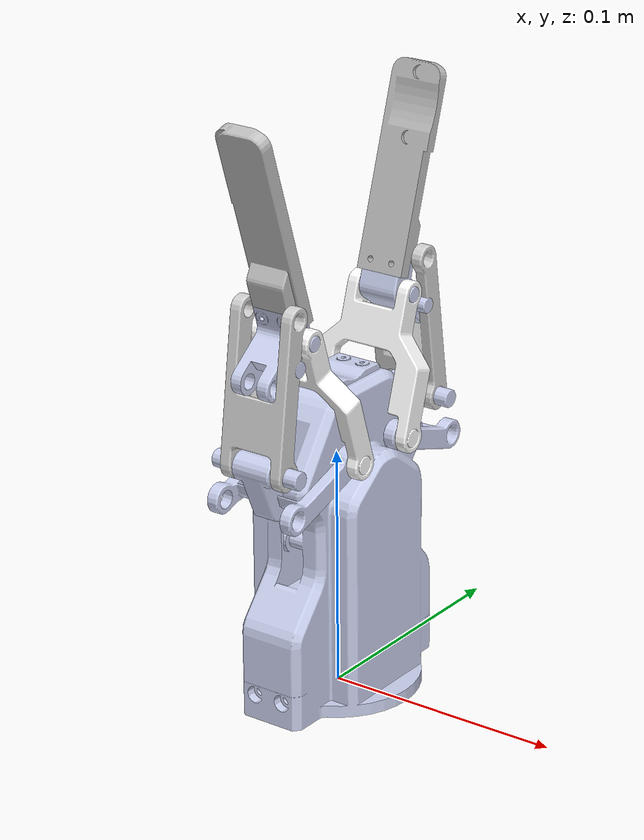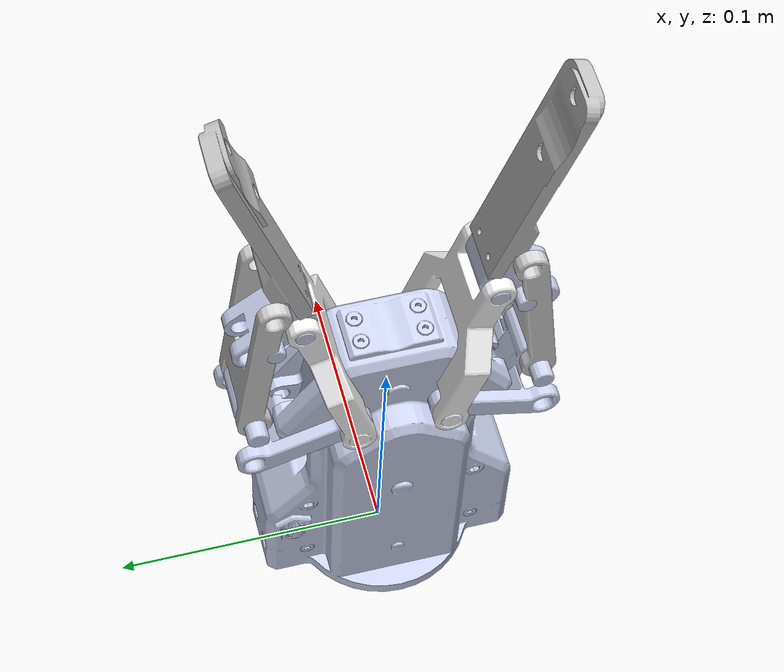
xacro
<?xml version="1.0"?>
<robot xmlns:xacro="http://www.ros.org/wiki/xacro" name="ag95">
  <xacro:include filename="$(find dh_description)/urdf/ag95.urdf.xacro" />
  <xacro:include filename="$(find dh_description)/urdf/ag95/finger.transmission.xacro" />

  <xacro:ag95 prefix="ag95_" />
  <xacro:finger_transmission prefix="ag95_" mechanical_reduction="${-100/0.03}" />

</robot>

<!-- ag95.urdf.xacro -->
<robot xmlns:xacro="http://www.ros.org/wiki/xacro">
  <xacro:include filename="$(find dh_description)/urdf/ag95/base_link.urdf.xacro" />
  <xacro:include filename="$(find dh_description)/urdf/ag95/finger.urdf.xacro" />
  <xacro:include filename="$(find dh_description)/urdf/ag95/outer_finger.urdf.xacro" />
  <xacro:include filename="$(find dh_description)/urdf/ag95/bottom_knuckle.urdf.xacro" />
  <xacro:include filename="$(find dh_description)/urdf/ag95/inner_knuckle.urdf.xacro" />
  <xacro:include filename="$(find dh_description)/urdf/ag95/outer_knuckle.urdf.xacro" />
  <xacro:include filename="$(find dh_description)/urdf/ag95/inner_finger.urdf.xacro" />
  <xacro:include filename="$(find dh_description)/urdf/ag95/inner_finger_pad.urdf.xacro" />

  <xacro:macro name="ag95" params="prefix:=''">

    <xacro:base_link prefix="${prefix}"/>
    <xacro:finger prefix="${prefix}"/>

    <xacro:outer_finger prefix="${prefix}" finger_prefix="left_"/>
    <xacro:bottom_knuckle prefix="${prefix}" finger_prefix="left_"/>
    <xacro:inner_knuckle prefix="${prefix}" finger_prefix="left_"/>
    <xacro:outer_knuckle prefix="${prefix}" finger_prefix="left_"/>
    <xacro:inner_finger prefix="${prefix}" finger_prefix="left_"/>
    <xacro:inner_finger_pad prefix="${prefix}" finger_prefix="left_"/>

    <xacro:outer_finger prefix="${prefix}" finger_prefix="right_" mirror="-1"/>
    <xacro:bottom_knuckle prefix="${prefix}" finger_prefix="right_" mirror="-1"/>
    <xacro:inner_knuckle prefix="${prefix}" finger_prefix="right_" mirror="-1"/>
    <xacro:outer_knuckle prefix="${prefix}" finger_prefix="right_" mirror="-1"/>
    <xacro:inner_finger prefix="${prefix}" finger_prefix="right_" mirror="-1"/>
    <xacro:inner_finger_pad prefix="${prefix}" finger_prefix="right_" mirror="-1"/>

  </xacro:macro>

</robot>

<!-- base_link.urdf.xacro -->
<robot xmlns:xacro="http://www.ros.org/wiki/xacro">

  <xacro:macro name="base_link" params="prefix">

    <link name="${prefix}base_link">
      <visual>
        <origin xyz="0 0 0" rpy="0 0 0" />
        <geometry>
          <mesh filename="package://dh_description/meshes/ag95/base_link.dae" />
        </geometry>
        <material name="">
          <color rgba="0.79216 0.81961 0.93333 1" />
        </material>
      </visual>
      <collision>
        <origin xyz="0 0 0" rpy="0 0 0" />
        <geometry>
          <mesh filename="package://dh_description/meshes/ag95/base_link.dae" />
        </geometry>
      </collision>
    </link>
    <inertial>
      <origin xyz="-1.9172E-05 4.6267E-05 0.054522" rpy="0 0 0" />
      <mass value="0.3499" />
      <inertia
        ixx="0.00050797" ixy="6.5338E-08" ixz="-7.1191E-08"
        iyy="0.00038427" iyz="3.8152E-07"
        izz="0.00016523" />
    </inertial>

  </xacro:macro>

</robot>

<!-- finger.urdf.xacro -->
<robot xmlns:xacro="http://www.ros.org/wiki/xacro">

  <xacro:macro name="finger" params="prefix">

    <xacro:property name="open" value="-0.03" />
    <xacro:property name="close" value="0.00" />

    <joint name="${prefix}finger_joint" type="prismatic">
      <origin xyz="0. 0. 0.085" rpy="0 0 0" />
      <parent link="${prefix}base_link" />
      <child link="${prefix}finger" />
      <axis xyz="0 0 1" />
      <limit lower="${open}" upper="${close}" velocity="0.03" effort="90.0" />
    </joint>

    <link name="${prefix}finger">
      <visual>
        <origin xyz="0 0 0" rpy="0 0 0" />
        <geometry>
          <mesh filename="package://dh_description/meshes/ag95/finger.dae" />
        </geometry>
        <material name="">
          <color rgba="1 1 1 1" />
        </material>
      </visual>
      <collision>
        <origin xyz="0 0 0" rpy="0 0 0" />
        <geometry>
          <mesh filename="package://dh_description/meshes/ag95/finger.dae" />
        </geometry>
      </collision>
      <inertial>
        <origin
          xyz="3.9135E-14 1.9462E-12 3.5194E-14" rpy="0 0 0" />
        <mass value="0.0066216" />
        <inertia
          ixx="1.4212E-06" ixy="-4.5344E-18" ixz="2.1335E-18"
          iyy="1.8936E-07" iyz="-2.1705E-19"
          izz="1.4719E-06" />
      </inertial>
    </link>

  </xacro:macro>

</robot>

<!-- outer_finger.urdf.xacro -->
<robot xmlns:xacro="http://www.ros.org/wiki/xacro">

  <xacro:macro name="outer_finger" params="prefix finger_prefix mirror:=1">

    <xacro:property name="open" value="-0.52360" />
    <xacro:property name="close" value="-0.22689" />

    <joint name="${prefix}${finger_prefix}outer_finger_joint" type="revolute">
      <origin xyz="0. ${mirror * 0.02141} 0." rpy="${-pi/2} 0 ${mirror * pi/2}" />
      <parent link="${prefix}finger" />
      <child link="${prefix}${finger_prefix}outer_finger" />
      <axis xyz="0 0 1" />
      <limit lower="${open}" upper="${close}" velocity="1.0" effort="90.0" />
      <mimic joint="${prefix}finger_joint" offset="${close}" multiplier="${(close - open) / 0.03}" />
    </joint>

    <link name="${prefix}${finger_prefix}outer_finger">
      <visual>
        <origin xyz="0 0 0" rpy="0 0 0" />
        <geometry>
          <mesh filename="package://dh_description/meshes/ag95/outer_finger.dae" />
        </geometry>
        <material name="">
          <color rgba="0.79216 0.81961 0.93333 1" />
        </material>
      </visual>
      <collision>
        <origin xyz="0 0 0" rpy="0 0 0" />
        <geometry>
          <mesh filename="package://dh_description/meshes/ag95/outer_finger.dae" />
        </geometry>
      </collision>
      <inertial>
        <origin xyz="0.056202 0.03372 -6.3379E-11" rpy="0 0 0" />
        <mass value="0.0067722" />
        <inertia
          ixx="1.3438E-06" ixy="-4.6858E-07" ixz="4.7977E-15"
          iyy="6.4835E-07" iyz="1.7311E-15"
          izz="1.4005E-06" />
      </inertial>
    </link>

  </xacro:macro>

</robot>

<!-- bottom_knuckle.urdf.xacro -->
<robot xmlns:xacro="http://www.ros.org/wiki/xacro">

  <xacro:macro name="bottom_knuckle" params="prefix finger_prefix mirror:=1">

    <xacro:property name="open" value="0.637045" />
    <xacro:property name="close" value="0.008727" />

    <joint name="${prefix}${finger_prefix}bottom_knuckle_joint" type="revolute">
      <origin xyz="0 ${mirror * 0.016} 0.10586" rpy="${-pi/2} 0 ${mirror * pi/2}" />
      <parent link="${prefix}base_link" />
      <child link="${prefix}${finger_prefix}bottom_knuckle" />
      <axis xyz="0 0 1" />
      <limit lower="${close}" upper="${open}" velocity="1.0" effort="90.0" />
      <mimic joint="${prefix}finger_joint" offset="${close}" multiplier="${(close - open) / 0.03}" />
    </joint>

    <link name="${prefix}${finger_prefix}bottom_knuckle">
      <visual>
        <origin xyz="0 0 0" rpy="0 0 0" />
        <geometry>
          <mesh filename="package://dh_description/meshes/ag95/bottom_knuckle.dae" />
        </geometry>
        <material name="">
          <color rgba="0.79216 0.81961 0.93333 1" />
        </material>
      </visual>
      <collision>
        <origin xyz="0 0 0" rpy="0 0 0" />
        <geometry>
          <mesh filename="package://dh_description/meshes/ag95/bottom_knuckle.dae" />
        </geometry>
      </collision>
      <inertial>
        <origin xyz="0.019421 0.0012759 5.0395E-09" rpy="0 0 0" />
        <mass value="0.0039541" />
        <inertia
          ixx="1.1534E-06" ixy="-2.1521E-09" ixz="-1.124E-13"
          iyy="1.7667E-06" iyz="-9.3728E-15"
          izz="6.8389E-07" />
      </inertial>
    </link>

  </xacro:macro>

</robot>

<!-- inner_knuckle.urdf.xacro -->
<robot xmlns:xacro="http://www.ros.org/wiki/xacro">

  <xacro:macro name="inner_knuckle" params="prefix finger_prefix mirror:=1">

    <xacro:property name="open" value="2.33525" />
    <xacro:property name="close" value="1.42244" />

    <joint name="${prefix}${finger_prefix}inner_knuckle_joint" type="revolute">
      <origin xyz="0 ${mirror * 0.016} 0.10586" rpy="${pi/2} 0 ${mirror * -pi/2}" />
      <parent link="${prefix}base_link" />
      <child link="${prefix}${finger_prefix}inner_knuckle" />
      <axis xyz="0 0 1" />
      <limit lower="${close}" upper="${open}" velocity="1.0"  effort="90.0" />
      <mimic joint="${prefix}finger_joint" offset="${close}" multiplier="${(close - open) / 0.03}" />
    </joint>

    <link name="${prefix}${finger_prefix}inner_knuckle">
      <visual>
        <origin xyz="0 0 0" rpy="0 0 0" />
        <geometry>
          <mesh filename="package://dh_description/meshes/ag95/inner_knuckle.dae" />
        </geometry>
        <material name="">
          <color rgba="1 1 1 1" />
        </material>
      </visual>
      <collision>
        <origin xyz="0 0 0" rpy="0 0 0" />
        <geometry>
          <mesh filename="package://dh_description/meshes/ag95/inner_knuckle.dae" />
        </geometry>
      </collision>
      <inertial>
        <origin xyz="-0.0014206 0.023192 -3.3876E-10" rpy="0 0 0" />
        <mass value="0.011317" />
        <inertia
          ixx="6.694E-06" ixy="1.0721E-07" ixz="2.7063E-15"
          iyy="3.1292E-06" iyz="-4.9646E-14"
          izz="3.7346E-06" />
      </inertial>
    </link>

  </xacro:macro>

</robot>

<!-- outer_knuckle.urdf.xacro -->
<robot xmlns:xacro="http://www.ros.org/wiki/xacro">

  <xacro:macro name="outer_knuckle" params="prefix finger_prefix mirror:=1">

    <xacro:property name="open" value="-0.72431" />
    <xacro:property name="close" value="-1.93926" />

    <joint name="${prefix}${finger_prefix}outer_knuckle_joint" type="revolute">
      <origin xyz="0.035409 -0.01297 0" rpy="0 0 0" />
      <parent link="${prefix}${finger_prefix}outer_finger" />
      <child link="${prefix}${finger_prefix}outer_knuckle" />
      <axis xyz="0 0 1" />
      <limit lower="${close}" upper="${open}" velocity="1.0" effort="90.0" />
      <mimic joint="${prefix}finger_joint" offset="${close}" multiplier="${(close - open) / 0.03}" />
    </joint>

    <link name="${prefix}${finger_prefix}outer_knuckle">
      <visual>
        <origin xyz="0 0 0" rpy="0 0 0" />
        <geometry>
          <mesh filename="package://dh_description/meshes/ag95/outer_knuckle.dae" />
        </geometry>
        <material name="">
          <color rgba="0.82353 0.82353 0.82353 1" />
        </material>
      </visual>
      <collision>
        <origin xyz="0 0 0" rpy="0 0 0" />
        <geometry>
          <mesh filename="package://dh_description/meshes/ag95/outer_knuckle.dae" />
        </geometry>
      </collision>
      <inertial>
        <origin xyz="0.020694 -0.01587 -3.2261E-11" rpy="0 0 0" />
        <mass value="0.0079313" />
        <inertia
          ixx="1.6657E-06" ixy="1.1368E-06" ixz="-2.0382E-15"
          iyy="2.63E-06" iyz="3.0915E-15"
          izz="2.5842E-06" />
      </inertial>
    </link>

  </xacro:macro>

</robot>

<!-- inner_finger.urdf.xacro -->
<robot xmlns:xacro="http://www.ros.org/wiki/xacro">

  <xacro:macro name="inner_finger" params="prefix finger_prefix mirror:=1">

    <xacro:property name="open" value="${-2.33525 + pi/2}" />
    <xacro:property name="close" value="${-1.42244 + pi/2}" />

    <joint name="${prefix}${finger_prefix}inner_finger_joint" type="revolute">
      <origin xyz="0.055 -0.0005 0" rpy="0 0 0" />
      <parent link="${prefix}${finger_prefix}inner_knuckle" />
      <child link="${prefix}${finger_prefix}inner_finger" />
      <axis xyz="0 0 1" />
      <limit lower="${open}" upper="${close}" velocity="1.0" effort="90.0" />
      <mimic joint="${prefix}finger_joint" offset="${close}" multiplier="${(close - open) / 0.03}" />
    </joint>

    <link name="${prefix}${finger_prefix}inner_finger">
      <visual>
        <origin xyz="0 0 0" rpy="0 0 0" />
        <geometry>
          <mesh filename="package://dh_description/meshes/ag95/inner_finger.dae" />
        </geometry>
        <material name="">
          <color rgba="0.79216 0.81961 0.93333 1" />
        </material>
      </visual>
      <collision>
        <origin xyz="0 0 0" rpy="0 0 0" />
        <geometry>
          <mesh filename="package://dh_description/meshes/ag95/inner_finger.dae" />
        </geometry>
      </collision>
      <inertial>
        <origin xyz="0.0065415 -0.00088999 -3.4935E-11" rpy="0 0 0" />
        <mass value="0.0063242" />
        <inertia
          ixx="4.5852E-07" ixy="1.4329E-07" ixz="-1.8883E-16"
          iyy="5.9203E-07" iyz="-2.1194E-13"
          izz="5.3236E-07" />
      </inertial>
    </link>

  </xacro:macro>

</robot>

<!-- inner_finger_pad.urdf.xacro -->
<robot xmlns:xacro="http://www.ros.org/wiki/xacro">

  <xacro:macro name="inner_finger_pad" params="prefix finger_prefix mirror:=1">

    <joint name="${prefix}${finger_prefix}inner_finger_pad_joint" type="fixed">
      <origin xyz="0.0104 -0.0005 0" rpy="${pi/2} 0 0" />
      <parent link="${prefix}${finger_prefix}inner_finger" />
      <child link="${prefix}${finger_prefix}inner_finger_pad" />
    </joint>

    <link name="${prefix}${finger_prefix}inner_finger_pad">
      <visual>
        <origin xyz="0 0 0" rpy="0 0 0" />
        <geometry>
          <mesh filename="package://dh_description/meshes/ag95/inner_finger_pad.dae" />
        </geometry>
        <material name="">
          <color rgba="0.75294 0.75294 0.75294 1" />
        </material>
      </visual>
      <collision>
        <origin xyz="0 0 0" rpy="0 0 0" />
        <geometry>
          <mesh filename="package://dh_description/meshes/ag95/inner_finger_pad.dae" />
        </geometry>
      </collision>
      <inertial>
        <origin xyz="2.7756E-17 -0.022596 0.0031612" rpy="0 0 0" />
        <mass value="0.013257" />
        <inertia
          ixx="6.5031E-06" ixy="-1.0656E-21" ixz="4.2343E-22"
          iyy="5.2255E-07" iyz="-1.4497E-07"
          izz="6.9079E-06" />
      </inertial>
    </link>

  </xacro:macro>

</robot>
